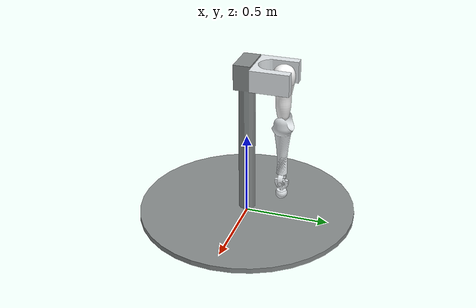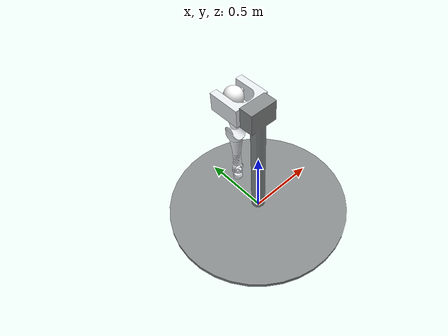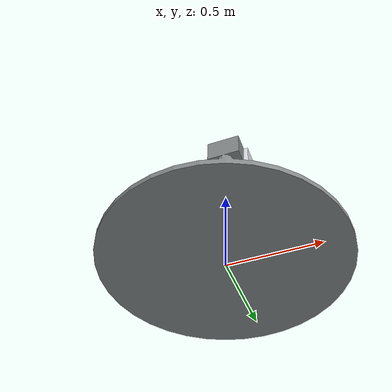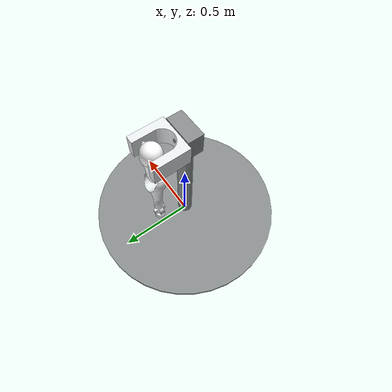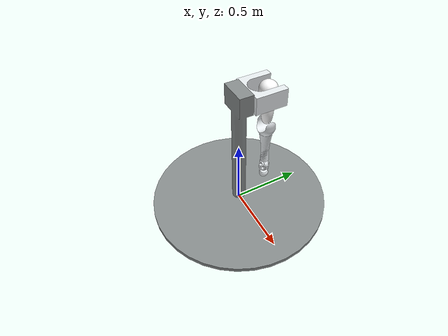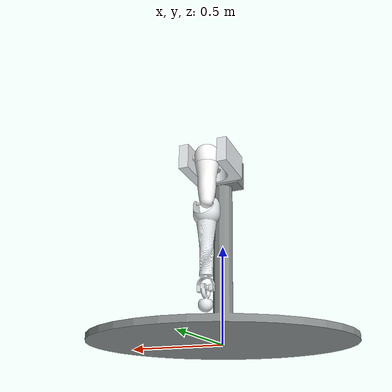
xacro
<?xml version="1.0"?>
<robot
  name="robot_arm" xmlns:xacro="http://ros.org/wiki/xacro">
  <link
    name="dummy_link">
  </link>
  <joint name="world_to_base" type="fixed">
    <parent link="dummy_link" />
    <child link="base_link" />
  </joint>
  <link
    name="base_link">
    <inertial>
      <origin
        xyz="-1.57352883492569E-17 1.23806099488061E-05 0.122640352107562"
        rpy="0 0 0" />
      <mass
        value="383.081449459895" />
      <inertia
        ixx="58.1375887219717"
        ixy="-1.44642598326101E-17"
        ixz="-7.58220860830791E-16"
        iyy="58.1958047662382"
        iyz="-0.00371056125895548"
        izz="65.7719404506967" />
    </inertial>
    <visual>
      <origin
        xyz="0 0 0"
        rpy="0 0 0" />
      <geometry>
        <mesh
          filename="package://robot_arm/meshes/base_link.STL" />
      </geometry>
      <material
        name="">
        <color
          rgba="0.529411764705882 0.549019607843137 0.549019607843137 1" />
      </material>
    </visual>
    <collision>
      <origin
        xyz="0 0 0"
        rpy="0 0 0" />
      <geometry>
        <mesh
          filename="package://robot_arm/meshes/base_link.STL" />
      </geometry>
    </collision>
  </link>
  <link
    name="ShoulderRoll">
    <inertial>
      <origin
        xyz="-5.81435209049046E-09 -0.000268793895158659 0.0993228983847673"
        rpy="0 0 0" />
      <mass
        value="9.85109974289092" />
      <inertia
        ixx="0.0613405938790785"
        ixy="8.25312500811482E-10"
        ixz="-2.809904082228E-09"
        iyy="0.137308343564358"
        iyz="0.000174174641087882"
        izz="0.102034002600403" />
    </inertial>
    <visual>
      <origin
        xyz="0 0 0"
        rpy="0 0 0" />
      <geometry>
        <mesh
          filename="package://robot_arm/meshes/ShoulderRoll.STL" />
      </geometry>
      <material
        name="">
        <color
          rgba="0.898039215686275 0.917647058823529 0.929411764705882 1" />
      </material>
    </visual>
    <collision>
      <origin
        xyz="0 0 0"
        rpy="0 0 0" />
      <geometry>
        <mesh
          filename="package://robot_arm/meshes/ShoulderRoll.STL" />
      </geometry>
    </collision>
  </link>
  <joint
    name="ShoulderRollJoint"
    type="continuous">
    <origin
      xyz="0 0.05 0.905"
      rpy="-1.5708 0 0" />
    <parent
      link="base_link" />
    <child
      link="ShoulderRoll" />
    <axis
      xyz="0 0 -1" />
    <limit lower="-1.57" upper="1.57" effort="50" velocity="2.0" />
  </joint>
  <link
    name="ShoulderPitch">
    <inertial>
      <origin
        xyz="0.00473656064901562 4.19347445657081E-10 -3.48717429845378E-08"
        rpy="0 0 0" />
      <mass
        value="1.06855896217137" />
      <inertia
        ixx="0.00195027405173375"
        ixy="-2.0516299161287E-11"
        ixz="8.25064628040536E-09"
        iyy="0.00172938597831085"
        iyz="7.77987030782786E-10"
        izz="0.00181389222703697" />
    </inertial>
    <visual>
      <origin
        xyz="0 0 0"
        rpy="0 0 0" />
      <geometry>
        <mesh
          filename="package://robot_arm/meshes/ShoulderPitch.STL" />
      </geometry>
      <material
        name="">
        <color
          rgba="1 1 1 1" />
      </material>
    </visual>
    <collision>
      <origin
        xyz="0 0 0"
        rpy="0 0 0" />
      <geometry>
        <mesh
          filename="package://robot_arm/meshes/ShoulderPitch.STL" />
      </geometry>
    </collision>
  </link>
  <joint
    name="ShoulderPitchJoint"
    type="continuous">
    <origin
      xyz="0 -0.0127 0.1651"
      rpy="1.5708 0 1.5708" />
    <parent
      link="ShoulderRoll" />
    <child
      link="ShoulderPitch" />
    <axis
      xyz="0 0 -1" />
    <limit lower="-1.57" upper="1.57" effort="50" velocity="2.0" />
  </joint>
  <link
    name="ArmRoll">
    <inertial>
      <origin
        xyz="6.3099446778736E-09 -2.08610865706113E-07 -0.0923046120686624"
        rpy="0 0 0" />
      <mass
        value="1.45084951290082" />
      <inertia
        ixx="0.00637777449209472"
        ixy="-1.03845542105536E-10"
        ixz="8.56636979302991E-10"
        iyy="0.00638088171946136"
        iyz="-3.5818422563623E-08"
        izz="0.00165573890312906" />
    </inertial>
    <visual>
      <origin
        xyz="0 0 0"
        rpy="0 0 0" />
      <geometry>
        <mesh
          filename="package://robot_arm/meshes/ArmRoll.STL" />
      </geometry>
      <material
        name="">
        <color
          rgba="1 1 1 1" />
      </material>
    </visual>
    <collision>
      <origin
        xyz="0 0 0"
        rpy="0 0 0" />
      <geometry>
        <mesh
          filename="package://robot_arm/meshes/ArmRoll.STL" />
      </geometry>
    </collision>
  </link>
  <joint
    name="ArmRollJoint"
    type="continuous">
    <origin
      xyz="0.049148 0 0"
      rpy="-1.5708 0 1.5708" />
    <parent
      link="ShoulderPitch" />
    <child
      link="ArmRoll" />
    <axis
      xyz="0 0 -1" />
    <limit lower="-1.57" upper="1.57" effort="50" velocity="2.0" />
  </joint>
  <link
    name="Elbow">
    <inertial>
      <origin
        xyz="9.71542672423276E-08 -0.133354220965053 -1.1938262017568E-07"
        rpy="0 0 0" />
      <mass
        value="2.42596161120103" />
      <inertia
        ixx="0.00954634993260107"
        ixy="-8.48967464784282E-09"
        ixz="3.93045018269851E-09"
        iyy="0.00376347633999173"
        iyz="2.35122944861129E-08"
        izz="0.0083767423411937" />
    </inertial>
    <visual>
      <origin
        xyz="0 0 0"
        rpy="0 0 0" />
      <geometry>
        <mesh
          filename="package://robot_arm/meshes/Elbow.STL" />
      </geometry>
      <material
        name="">
        <color
          rgba="0.898039215686275 0.917647058823529 0.929411764705882 1" />
      </material>
    </visual>
    <collision>
      <origin
        xyz="0 0 0"
        rpy="0 0 0" />
      <geometry>
        <mesh
          filename="package://robot_arm/meshes/Elbow.STL" />
      </geometry>
    </collision>
  </link>
  <joint
    name="ElbowJoint"
    type="continuous">
    <origin
      xyz="0 0 -0.20588"
      rpy="1.5708 0 0" />
    <parent
      link="ArmRoll" />
    <child
      link="Elbow" />
    <axis
      xyz="0 0 -1" />
    <limit lower="-1.57" upper="1.57" effort="50" velocity="2.0" />
  </joint>
  <link
    name="WristRoll">
    <inertial>
      <origin
        xyz="-5.70478676520381E-08 4.47641975016313E-08 0.0578513783180692"
        rpy="0 0 0" />
      <mass
        value="0.121855342582307" />
      <inertia
        ixx="0.000193294080215172"
        ixy="-8.73705063159057E-11"
        ixz="-1.00586970528501E-10"
        iyy="0.000127145484684631"
        iyz="9.55201535008496E-11"
        izz="8.5237004024183E-05" />
    </inertial>
    <visual>
      <origin
        xyz="0 0 0"
        rpy="0 0 0" />
      <geometry>
        <mesh
          filename="package://robot_arm/meshes/WristRoll.STL" />
      </geometry>
      <material
        name="">
        <color
          rgba="0.898039215686275 0.917647058823529 0.929411764705882 1" />
      </material>
    </visual>
    <collision>
      <origin
        xyz="0 0 0"
        rpy="0 0 0" />
      <geometry>
        <mesh
          filename="package://robot_arm/meshes/WristRoll.STL" />
      </geometry>
    </collision>
  </link>
  <joint
    name="WristRollJoint"
    type="continuous">
    <origin
      xyz="0 -0.33946 0"
      rpy="1.5708 0 0" />
    <parent
      link="Elbow" />
    <child
      link="WristRoll" />
    <axis
      xyz="0 0 1" />
    <limit lower="-1.57" upper="1.57" effort="50" velocity="2.0" />
  </joint>
  <link
    name="WristPitch">
    <inertial>
      <origin
        xyz="0 -3.1172159298265E-10 3.84086784509088E-07"
        rpy="0 0 0" />
      <mass
        value="0.0946633788995506" />
      <inertia
        ixx="6.03757654449565E-05"
        ixy="2.56396644943696E-10"
        ixz="-2.31346819626229E-20"
        iyy="5.99849621521673E-05"
        iyz="3.08326765697005E-12"
        izz="7.59038124773005E-06" />
    </inertial>
    <visual>
      <origin
        xyz="0 0 0"
        rpy="0 0 0" />
      <geometry>
        <mesh
          filename="package://robot_arm/meshes/WristPitch.STL" />
      </geometry>
      <material
        name="">
        <color
          rgba="0.898039215686275 0.917647058823529 0.929411764705882 1" />
      </material>
    </visual>
    <collision>
      <origin
        xyz="0 0 0"
        rpy="0 0 0" />
      <geometry>
        <mesh
          filename="package://robot_arm/meshes/WristPitch.STL" />
      </geometry>
    </collision>
  </link>
  <joint
    name="WristPitchJoint"
    type="continuous">
    <origin
      xyz="0 0 0.088"
      rpy="-1.5708 0 3.1416" />
    <parent
      link="WristRoll" />
    <child
      link="WristPitch" />
    <axis
      xyz="0 0 -1" />
    <limit lower="-1.57" upper="1.57" effort="50" velocity="2.0" />
  </joint>
  <link
    name="WristYaw">
    <inertial>
      <origin
        xyz="0.0503395415355519 6.01187888026514E-10 1.52382306772836E-09"
        rpy="0 0 0" />
      <mass
        value="0.330938909305297" />
      <inertia
        ixx="0.000180355244386451"
        ixy="1.90966456968596E-11"
        ixz="2.05060473907997E-11"
        iyy="0.000213755341670707"
        iyz="2.08711803729314E-11"
        izz="0.000125944224991248" />
    </inertial>
    <visual>
      <origin
        xyz="0 0 0"
        rpy="0 0 0" />
      <geometry>
        <mesh
          filename="package://robot_arm/meshes/WristYaw.STL" />
      </geometry>
      <material
        name="">
        <color
          rgba="0.898039215686275 0.917647058823529 0.929411764705882 1" />
      </material>
    </visual>
    <collision>
      <origin
        xyz="0 0 0"
        rpy="0 0 0" />
      <geometry>
        <mesh
          filename="package://robot_arm/meshes/WristYaw.STL" />
      </geometry>
    </collision>
  </link>
  <joint
    name="WristYawJoint"
    type="continuous">
    <origin
      xyz="0 0 0"
      rpy="1.5708 0 -1.5708" />
    <parent
      link="WristPitch" />
    <child
      link="WristYaw" />
    <axis
      xyz="0 0 -1" />
    <limit lower="-1.57" upper="1.57" effort="50" velocity="2.0" />
  </joint>

  <ros2_control name="GazeboSystem" type="system">
    <hardware>
        <plugin>gazebo_ros2_control/GazeboSystem</plugin>
    </hardware>

    <!-- Velocity Controllers -->
    <joint name="ShoulderRollJoint">
        <command_interface name="velocity">
          <param name="min">-1000.0</param>
          <param name="max">1000.0</param>
        </command_interface>
        <state_interface name="position"/>
        <state_interface name="velocity"/>
    </joint>
    <joint name="ShoulderPitchJoint">
        <command_interface name="velocity">
          <param name="min">-1000.0</param>
          <param name="max">1000.0</param>
        </command_interface>
        <state_interface name="position"/>
        <state_interface name="velocity"/>
    </joint>
    <joint name="ArmRollJoint">
        <command_interface name="velocity">
          <param name="min">-1000.0</param>
          <param name="max">1000.0</param>
        </command_interface>
        <state_interface name="position"/>
        <state_interface name="velocity"/>
    </joint>
    <joint name="ElbowJoint">
        <command_interface name="velocity">
          <param name="min">-1000.0</param>
          <param name="max">1000.0</param>
        </command_interface>
        <state_interface name="position"/>
        <state_interface name="velocity"/>
    </joint>
    <joint name="WristRollJoint">
        <command_interface name="velocity">
          <param name="min">-1000.0</param>
          <param name="max">1000.0</param>
        </command_interface>
        <state_interface name="position"/>
        <state_interface name="velocity"/>
    </joint>
    <joint name="WristPitchJoint">
        <command_interface name="velocity">
          <param name="min">-1000.0</param>
          <param name="max">1000.0</param>
        </command_interface>
        <state_interface name="position"/>
        <state_interface name="velocity"/>
    </joint>
    <joint name="WristYawJoint">
        <command_interface name="velocity">
          <param name="min">-1000.0</param>
          <param name="max">1000.0</param>
        </command_interface>
        <state_interface name="position"/>
        <state_interface name="velocity"/>
    </joint>
  </ros2_control>

  <gazebo>
    <plugin filename="libgazebo_ros2_control.so" name="gazebo_ros2_control">
      <parameters>$(find robot_arm)/config/control.yaml</parameters>
    </plugin>
  </gazebo>

  <gazebo reference="ShoulderRoll">
   <turnGravityOff>true</turnGravityOff>
  </gazebo>
  <gazebo reference="ShoulderPitch">
   <turnGravityOff>true</turnGravityOff>
  </gazebo>
  <gazebo reference="ArmRoll">
   <turnGravityOff>true</turnGravityOff>
  </gazebo>
  <gazebo reference="Elbow">
   <turnGravityOff>true</turnGravityOff>
  </gazebo>
  <gazebo reference="WristRoll">
   <turnGravityOff>true</turnGravityOff>
  </gazebo>
  <gazebo reference="WristPitch">
   <turnGravityOff>true</turnGravityOff>
  </gazebo>
  <gazebo reference="WristYaw">
   <turnGravityOff>true</turnGravityOff>
  </gazebo>
</robot>
